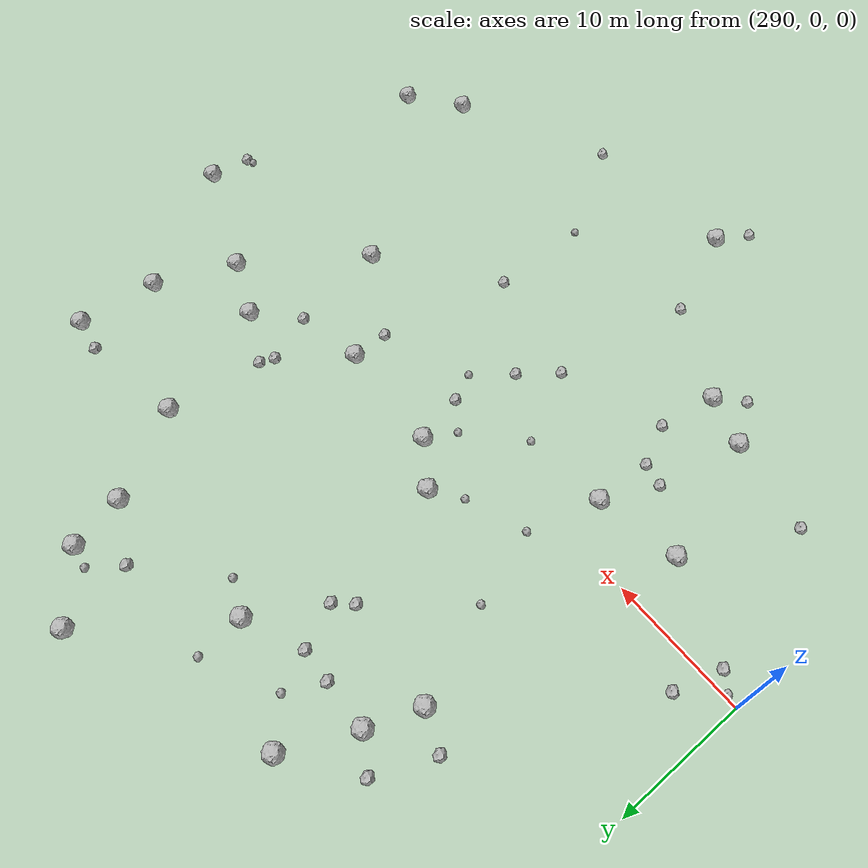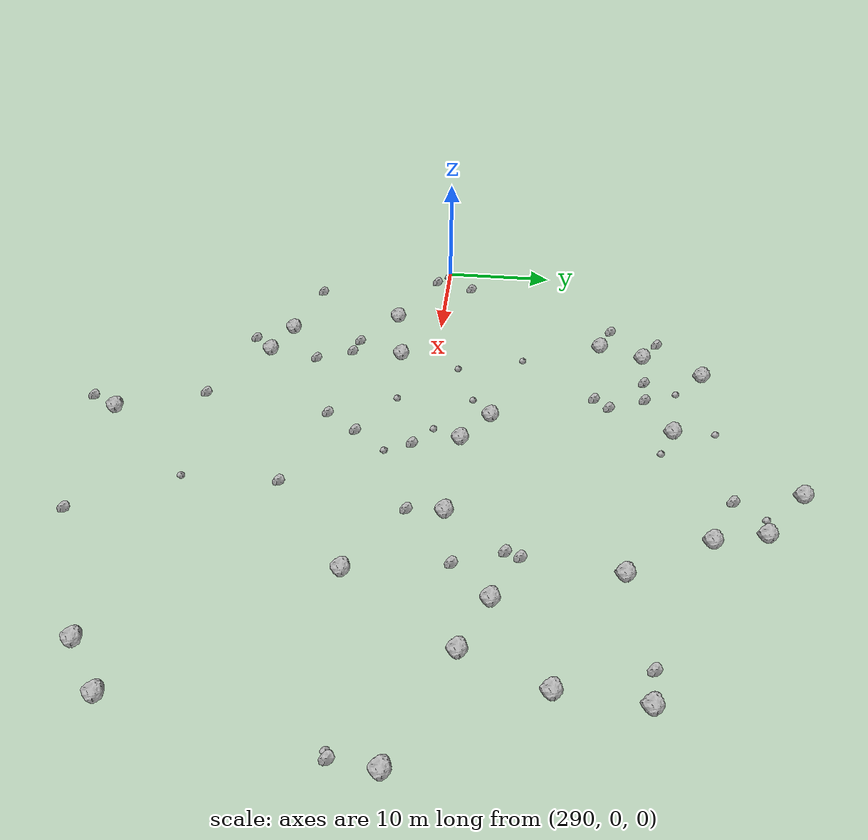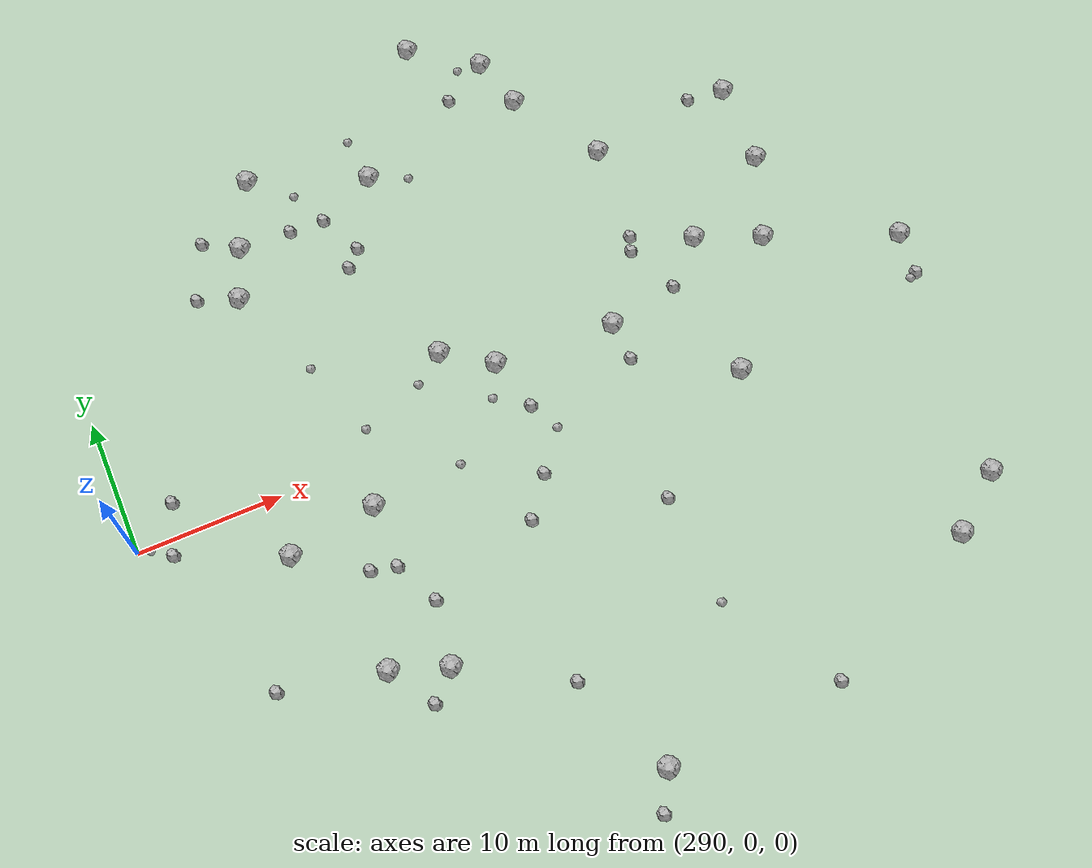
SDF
<sdf version="1.6">
 <world name="default">
  <include><uri>model://sun</uri></include>
  <model name="rock1_8_3">
   <include><uri>model://rock1</uri><pose>325.5885314529703 26.491360533833557 0.5 0 0 0</pose></include>
  </model>
  <model name="rock1_8_4">
   <include><uri>model://rock1</uri><pose>303.7758642577042 18.767811867858832 0.5 0 0 0</pose></include>
  </model>
  <model name="rock1_8_5">
   <include><uri>model://rock1</uri><pose>333.7825137821586 6.595164235011893 0.5 0 0 0</pose></include>
  </model>
  <model name="rock1_8_6">
   <include><uri>model://rock1</uri><pose>326.6197091113706 22.43353303418251 0.5 0 0 0</pose></include>
  </model>
  <model name="rock1_8_7">
   <include><uri>model://rock1</uri><pose>347.38235303566216 0.9754602647451094 0.5 0 0 0</pose></include>
  </model>
  <model name="rock1_8_8">
   <include><uri>model://rock1</uri><pose>321.03084902916135 29.895996114684834 0.5 0 0 0</pose></include>
  </model>
  <model name="rock1_8_9">
   <include><uri>model://rock1</uri><pose>338.33575314657094 4.702899496476498 0.5 0 0 0</pose></include>
  </model>
  <model name="rock1_8_10">
   <include><uri>model://rock1</uri><pose>325.56424085614947 2.6587691107757365 0.5 0 0 0</pose></include>
  </model>
  <model name="rock1_8_11">
   <include><uri>model://rock1</uri><pose>332.1879537368844 -4.07892552268213 0.5 0 0 0</pose></include>
  </model>
  <model name="rock1_8_12">
   <include><uri>model://rock1</uri><pose>302.38983365520113 14.96507970287724 0.5 0 0 0</pose></include>
  </model>
  <model name="rock1_8_13">
   <include><uri>model://rock1</uri><pose>305.9785938126547 -15.29896942033047 0.5 0 0 0</pose></include>
  </model>
  <model name="rock1_8_14">
   <include><uri>model://rock1</uri><pose>302.24175221182554 -13.93377054290238 0.5 0 0 0</pose></include>
  </model>
  <model name="rock1_8_15">
   <include><uri>model://rock1</uri><pose>314.3038066858509 20.603538207184087 0.5 0 0 0</pose></include>
  </model>
  <model name="rock1_8_16">
   <include><uri>model://rock1</uri><pose>305.4437600851191 -3.1990002617714453 0.5 0 0 0</pose></include>
  </model>
  <model name="rock1_8_17">
   <include><uri>model://rock1</uri><pose>330.51506776429375 15.931033824971905 0.5 0 0 0</pose></include>
  </model>
  <model name="rock1_8_18">
   <include><uri>model://rock1</uri><pose>313.63590061125984 5.453749498421594 0.5 0 0 0</pose></include>
  </model>
  <model name="rock1_8_19">
   <include><uri>model://rock1</uri><pose>341.2908902133145 17.050963998160654 0.5 0 0 0</pose></include>
  </model>
  <model name="rock1_8_20">
   <include><uri>model://rock1</uri><pose>340.8601937110085 10.83711336154417 0.5 0 0 0</pose></include>
  </model>
  <model name="rock1_8_21">
   <include><uri>model://rock1</uri><pose>344.1130750986124 -17.495397521023925 0.5 0 0 0</pose></include>
  </model>
  <model name="rock1_8_22">
   <include><uri>model://rock1</uri><pose>306.085121326623 23.82365802609049 0.5 0 0 0</pose></include>
  </model>
  <model name="rock1_8_23">
   <include><uri>model://rock1</uri><pose>315.8407089744437 -26.566848072826485 0.5 0 0 0</pose></include>
  </model>
  <model name="rock1_8_24">
   <include><uri>model://rock1</uri><pose>299.21386856009116 -4.285038019786988 0.5 0 0 0</pose></include>
  </model>
  <model name="rock1_8_25">
   <include><uri>model://rock1</uri><pose>316.91652546214806 3.1537791118629244 0.5 0 0 0</pose></include>
  </model>
  <model name="rock1_8_26">
   <include><uri>model://rock1</uri><pose>340.1582604603895 -20.503288005033756 0.5 0 0 0</pose></include>
  </model>
  <model name="rock2_8_0">
   <include><uri>model://rock2</uri><pose>346.9210719511615 -2.216539638982983 0.3 0 0 0</pose></include>
  </model>
  <model name="rock2_8_1">
   <include><uri>model://rock2</uri><pose>295.24389978786166 -12.377170079808081 0.3 0 0 0</pose></include>
  </model>
  <model name="rock2_8_2">
   <include><uri>model://rock2</uri><pose>292.1570978435798 -1.1333963646422625 0.3 0 0 0</pose></include>
  </model>
  <model name="rock2_8_3">
   <include><uri>model://rock2</uri><pose>328.18384837833605 -26.043921253703985 0.3 0 0 0</pose></include>
  </model>
  <model name="rock2_8_4">
   <include><uri>model://rock2</uri><pose>309.9884339502866 18.614219790636774 0.3 0 0 0</pose></include>
  </model>
  <model name="rock2_8_5">
   <include><uri>model://rock2</uri><pose>299.5831012560268 16.079077407672585 0.3 0 0 0</pose></include>
  </model>
  <model name="rock2_8_6">
   <include><uri>model://rock2</uri><pose>310.2844840706184 14.266287142882803 0.3 0 0 0</pose></include>
  </model>
  <model name="rock2_8_7">
   <include><uri>model://rock2</uri><pose>303.5580997521739 -7.2837124508672915 0.3 0 0 0</pose></include>
  </model>
  <model name="rock2_8_8">
   <include><uri>model://rock2</uri><pose>325.5666735378863 -0.2146659234491466 0.3 0 0 0</pose></include>
  </model>
  <model name="rock2_8_9">
   <include><uri>model://rock2</uri><pose>311.39884712766116 15.500789650181716 0.3 0 0 0</pose></include>
  </model>
  <model name="rock2_8_10">
   <include><uri>model://rock2</uri><pose>322.1581558103512 24.499911310130955 0.3 0 0 0</pose></include>
  </model>
  <model name="rock2_8_11">
   <include><uri>model://rock2</uri><pose>305.29807452272064 -7.714315265693013 0.3 0 0 0</pose></include>
  </model>
  <model name="rock2_8_12">
   <include><uri>model://rock2</uri><pose>304.11923208877715 -17.068288216667543 0.3 0 0 0</pose></include>
  </model>
  <model name="rock2_8_13">
   <include><uri>model://rock2</uri><pose>317.8354088130878 -0.7027736963032929 0.3 0 0 0</pose></include>
  </model>
  <model name="rock2_8_14">
   <include><uri>model://rock2</uri><pose>306.72483520901886 -10.826062500404518 0.3 0 0 0</pose></include>
  </model>
  <model name="rock2_8_15">
   <include><uri>model://rock2</uri><pose>329.6087564520607 8.548775361115496 0.3 0 0 0</pose></include>
  </model>
  <model name="rock2_8_16">
   <include><uri>model://rock2</uri><pose>316.6678858681818 -5.5998111055607005 0.3 0 0 0</pose></include>
  </model>
  <model name="rock2_8_17">
   <include><uri>model://rock2</uri><pose>314.36180437252045 -28.986333420427126 0.3 0 0 0</pose></include>
  </model>
  <model name="rock2_8_18">
   <include><uri>model://rock2</uri><pose>330.6983064928986 3.6653809757219165 0.3 0 0 0</pose></include>
  </model>
  <model name="rock2_8_19">
   <include><uri>model://rock2</uri><pose>338.50889292049163 17.419949891130045 0.3 0 0 0</pose></include>
  </model>
  <model name="rock2_8_20">
   <include><uri>model://rock2</uri><pose>293.22479364319423 2.4061904300578405 0.3 0 0 0</pose></include>
  </model>
  <model name="rock2_8_21">
   <include><uri>model://rock2</uri><pose>323.48357350439187 -10.513730683609833 0.3 0 0 0</pose></include>
  </model>
  <model name="rock2_8_22">
   <include><uri>model://rock2</uri><pose>314.5816118381493 -8.294302850439372 0.3 0 0 0</pose></include>
  </model>
  <model name="rock2_8_23">
   <include><uri>model://rock2</uri><pose>301.3530273619281 20.26043381334192 0.3 0 0 0</pose></include>
  </model>
  <model name="rock2_8_24">
   <include><uri>model://rock2</uri><pose>307.4826241185685 18.70501307933425 0.3 0 0 0</pose></include>
  </model>
  <model name="rock2_8_25">
   <include><uri>model://rock2</uri><pose>329.1770141445272 7.437451306593005 0.3 0 0 0</pose></include>
  </model>
  <model name="rock2_8_26">
   <include><uri>model://rock2</uri><pose>312.8956576557569 -19.37274134426358 0.3 0 0 0</pose></include>
  </model>
  <model name="rock3_8_0">
   <include><uri>model://rock3</uri><pose>311.4017020313562 3.8296982594234734 0.2 0 0 0</pose></include>
  </model>
  <model name="rock3_8_1">
   <include><uri>model://rock3</uri><pose>306.91321497367966 2.16715852120749 0.2 0 0 0</pose></include>
  </model>
  <model name="rock3_8_2">
   <include><uri>model://rock3</uri><pose>323.5622844683419 -18.389174993289878 0.2 0 0 0</pose></include>
  </model>
  <model name="rock3_8_3">
   <include><uri>model://rock3</uri><pose>346.389194598468 -2.4664181789301196 0.2 0 0 0</pose></include>
  </model>
  <model name="rock3_8_4">
   <include><uri>model://rock3</uri><pose>316.9028144812214 19.468289043971453 0.2 0 0 0</pose></include>
  </model>
  <model name="rock3_8_5">
   <include><uri>model://rock3</uri><pose>323.7879136929124 26.731910143205198 0.2 0 0 0</pose></include>
  </model>
  <model name="rock3_8_6">
   <include><uri>model://rock3</uri><pose>308.7297728285984 21.357869225674747 0.2 0 0 0</pose></include>
  </model>
  <model name="rock3_8_7">
   <include><uri>model://rock3</uri><pose>290.88316483840083 -0.23308382052507426 0.2 0 0 0</pose></include>
  </model>
  <model name="rock3_8_8">
   <include><uri>model://rock3</uri><pose>313.9597966774188 24.12836772736769 0.2 0 0 0</pose></include>
  </model>
  <model name="rock3_8_9">
   <include><uri>model://rock3</uri><pose>338.104709501574 4.6262482352044 0.2 0 0 0</pose></include>
  </model>
  <model name="rock3_8_10">
   <include><uri>model://rock3</uri><pose>318.84312263590317 -2.910815208914226 0.2 0 0 0</pose></include>
  </model>
  <model name="rock3_8_11">
   <include><uri>model://rock3</uri><pose>311.8074222759015 -2.746013778260604 0.2 0 0 0</pose></include>
  </model>
  <model name="rock3_8_12">
   <include><uri>model://rock3</uri><pose>305.05430655818276 7.923729155196725 0.2 0 0 0</pose></include>
  </model>
  <model name="rock3_8_13">
   <include><uri>model://rock3</uri><pose>315.6747228171126 0.8280119346300943 0.2 0 0 0</pose></include>
  </model>
 </world>
</sdf>
